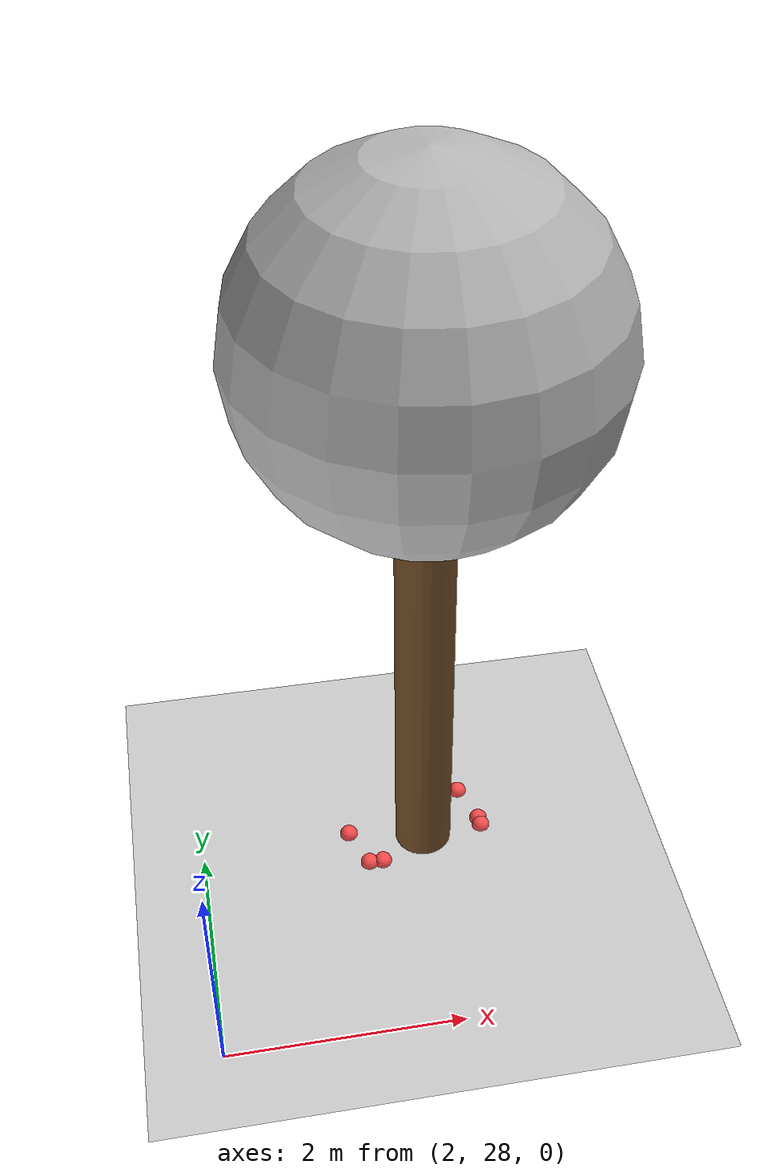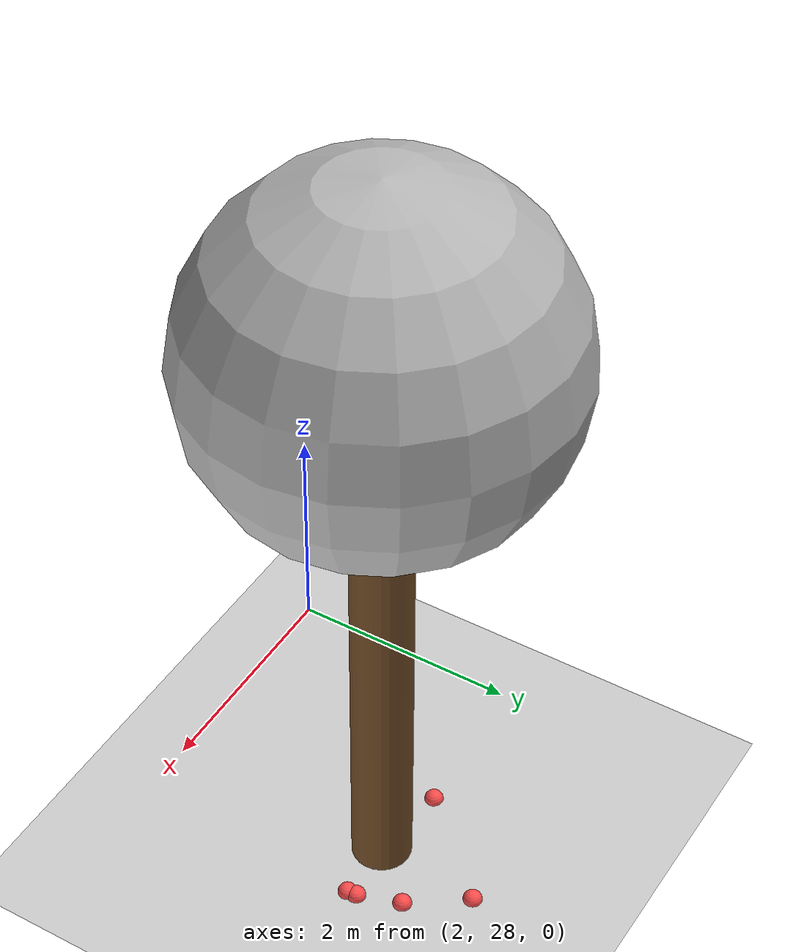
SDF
<sdf version="1.7">
 <world name="default">
  <model name="ground_plane">
   <static>1</static>
   <link name="link">
    <collision name="collision">
     <geometry><plane><normal>0 0 1</normal><size>100 100</size></plane></geometry>
     <surface>
      <contact><collide_bitmask>65535</collide_bitmask></contact>
      <friction><ode><mu>100</mu><mu2>50</mu2></ode></friction>
     </surface>
    </collision>
    <visual name="visual">
     <cast_shadows>0</cast_shadows>
     <geometry><plane><normal>0 0 1</normal><size>100 100</size></plane></geometry>
     <material>
      <script><uri>file://media/materials/scripts/gazebo.material</uri><name>Gazebo/Grey</name></script>
     </material>
    </visual>
   </link>
  </model>
  <model name="tree_simple_27">
   <static>1</static>
   <link name="link">
    <pose>0 0 0.1 0 -0 0</pose>
    <inertial>
     <mass>666</mass>
     <inertia>
      <ixx>0.0861167</ixx>
      <ixy>0</ixy>
      <ixz>0</ixz>
      <iyy>0.0861167</iyy>
      <iyz>0</iyz>
      <izz>0.0861167</izz>
     </inertia>
    </inertial>
    <collision name="collision_trunk">
     <pose>0 0 2 0 -0 0</pose>
     <geometry><cylinder><radius>0.25</radius><length>4</length></cylinder></geometry>
     <surface>
      <contact>
       <poissons_ratio>0.347</poissons_ratio>
       <elastic_modulus>8.8e+09</elastic_modulus>
       <ode><kp>100000</kp><kd>100</kd><max_vel>100</max_vel><min_depth>0.001</min_depth></ode>
      </contact>
      <friction>
       <torsional>
        <coefficient>1</coefficient>
        <use_patch_radius>0</use_patch_radius>
        <surface_radius>0.01</surface_radius>
       </torsional>
      </friction>
     </surface>
    </collision>
    <collision name="collision_treetop">
     <pose>0 0 5.2 0 -0 0</pose>
     <geometry><sphere><radius>1.5</radius></sphere></geometry>
     <surface>
      <contact>
       <poissons_ratio>0.347</poissons_ratio>
       <elastic_modulus>8.8e+09</elastic_modulus>
       <ode><kp>100000</kp><kd>100</kd><max_vel>100</max_vel><min_depth>0.001</min_depth></ode>
      </contact>
      <friction>
       <torsional>
        <coefficient>1</coefficient>
        <use_patch_radius>0</use_patch_radius>
        <surface_radius>0.01</surface_radius>
       </torsional>
      </friction>
     </surface>
    </collision>
    <visual name="trunk">
     <pose>0 0 2 0 -0 0</pose>
     <geometry><cylinder><radius>0.25</radius><length>4</length></cylinder></geometry>
     <material>
      <script>
       <uri>model://tree_simple/scripts</uri>
       <uri>model://tree_simple/materials/textures</uri>
       <name>TreeSimple/Trunk</name>
      </script>
     </material>
    </visual>
    <visual name="treetop">
     <pose>0 0 5.2 0 -0 0</pose>
     <geometry><sphere><radius>1.5</radius></sphere></geometry>
     <material>
      <script>
       <uri>model://tree_simple/scripts</uri>
       <uri>model://tree_simple/materials/textures</uri>
       <name>TreeSimple/Treetop</name>
      </script>
     </material>
    </visual>
   </link>
   <pose>4 30 -0.1 0 -0 0</pose>
  </model>
  <model name="seed_red_115">
   <link name="link">
    <inertial>
     <mass>1</mass>
     <inertia><ixx>0.1</ixx><ixy>0</ixy><ixz>0</ixz><iyy>0.1</iyy><iyz>0</iyz><izz>0.1</izz></inertia>
    </inertial>
    <visual name="visual">
     <geometry><sphere><radius>0.08</radius></sphere></geometry>
     <material>
      <script><name>Gazebo/Grey</name><uri>file://media/materials/scripts/gazebo.material</uri></script>
      <shader type="pixel"><normal_map>__default__</normal_map></shader>
      <ambient>1 0.3 0.3 1</ambient>
      <diffuse>0.7 0.7 0.7 1</diffuse>
      <specular>0.01 0.01 0.01 1</specular>
      <emissive>0 0 0 1</emissive>
     </material>
    </visual>
    <collision name="collision">
     <geometry><sphere><radius>0.0005</radius></sphere></geometry>
     <surface>
      <friction>
       <ode><mu>1</mu><mu2>1</mu2><fdir1>0 0 0</fdir1><slip1>0</slip1><slip2>0</slip2></ode>
       <torsional>
        <coefficient>1</coefficient>
        <patch_radius>0</patch_radius>
        <surface_radius>0</surface_radius>
        <use_patch_radius>1</use_patch_radius>
        <ode><slip>0</slip></ode>
       </torsional>
      </friction>
      <bounce><restitution_coefficient>0</restitution_coefficient><threshold>1e+06</threshold></bounce>
      <contact>
       <collide_without_contact>0</collide_without_contact>
       <collide_without_contact_bitmask>1</collide_without_contact_bitmask>
       <collide_bitmask>1</collide_bitmask>
       <ode>
        <soft_cfm>0</soft_cfm>
        <soft_erp>0.2</soft_erp>
        <kp>1e+13</kp>
        <kd>1</kd>
        <max_vel>0.01</max_vel>
        <min_depth>0</min_depth>
       </ode>
       <bullet>
        <split_impulse>1</split_impulse>
        <split_impulse_penetration_threshold>-0.01</split_impulse_penetration_threshold>
        <soft_cfm>0</soft_cfm>
        <soft_erp>0.2</soft_erp>
        <kp>1e+13</kp>
        <kd>1</kd>
       </bullet>
      </contact>
     </surface>
    </collision>
   </link>
   <static>0</static>
   <pose>4.41543 30.4467 0.0005 0 -0 0</pose>
  </model>
  <model name="seed_red_116">
   <link name="link">
    <inertial>
     <mass>1</mass>
     <inertia><ixx>0.1</ixx><ixy>0</ixy><ixz>0</ixz><iyy>0.1</iyy><iyz>0</iyz><izz>0.1</izz></inertia>
    </inertial>
    <visual name="visual">
     <geometry><sphere><radius>0.08</radius></sphere></geometry>
     <material>
      <script><name>Gazebo/Grey</name><uri>file://media/materials/scripts/gazebo.material</uri></script>
      <shader type="pixel"><normal_map>__default__</normal_map></shader>
      <ambient>1 0.3 0.3 1</ambient>
      <diffuse>0.7 0.7 0.7 1</diffuse>
      <specular>0.01 0.01 0.01 1</specular>
      <emissive>0 0 0 1</emissive>
     </material>
    </visual>
    <collision name="collision">
     <geometry><sphere><radius>0.0005</radius></sphere></geometry>
     <surface>
      <friction>
       <ode><mu>1</mu><mu2>1</mu2><fdir1>0 0 0</fdir1><slip1>0</slip1><slip2>0</slip2></ode>
       <torsional>
        <coefficient>1</coefficient>
        <patch_radius>0</patch_radius>
        <surface_radius>0</surface_radius>
        <use_patch_radius>1</use_patch_radius>
        <ode><slip>0</slip></ode>
       </torsional>
      </friction>
      <bounce><restitution_coefficient>0</restitution_coefficient><threshold>1e+06</threshold></bounce>
      <contact>
       <collide_without_contact>0</collide_without_contact>
       <collide_without_contact_bitmask>1</collide_without_contact_bitmask>
       <collide_bitmask>1</collide_bitmask>
       <ode>
        <soft_cfm>0</soft_cfm>
        <soft_erp>0.2</soft_erp>
        <kp>1e+13</kp>
        <kd>1</kd>
        <max_vel>0.01</max_vel>
        <min_depth>0</min_depth>
       </ode>
       <bullet>
        <split_impulse>1</split_impulse>
        <split_impulse_penetration_threshold>-0.01</split_impulse_penetration_threshold>
        <soft_cfm>0</soft_cfm>
        <soft_erp>0.2</soft_erp>
        <kp>1e+13</kp>
        <kd>1</kd>
       </bullet>
      </contact>
     </surface>
    </collision>
   </link>
   <static>0</static>
   <pose>3.58799 29.7436 0.0005 0 -0 0</pose>
  </model>
  <model name="seed_red_117">
   <link name="link">
    <inertial>
     <mass>1</mass>
     <inertia><ixx>0.1</ixx><ixy>0</ixy><ixz>0</ixz><iyy>0.1</iyy><iyz>0</iyz><izz>0.1</izz></inertia>
    </inertial>
    <visual name="visual">
     <geometry><sphere><radius>0.08</radius></sphere></geometry>
     <material>
      <script><name>Gazebo/Grey</name><uri>file://media/materials/scripts/gazebo.material</uri></script>
      <shader type="pixel"><normal_map>__default__</normal_map></shader>
      <ambient>1 0.3 0.3 1</ambient>
      <diffuse>0.7 0.7 0.7 1</diffuse>
      <specular>0.01 0.01 0.01 1</specular>
      <emissive>0 0 0 1</emissive>
     </material>
    </visual>
    <collision name="collision">
     <geometry><sphere><radius>0.0005</radius></sphere></geometry>
     <surface>
      <friction>
       <ode><mu>1</mu><mu2>1</mu2><fdir1>0 0 0</fdir1><slip1>0</slip1><slip2>0</slip2></ode>
       <torsional>
        <coefficient>1</coefficient>
        <patch_radius>0</patch_radius>
        <surface_radius>0</surface_radius>
        <use_patch_radius>1</use_patch_radius>
        <ode><slip>0</slip></ode>
       </torsional>
      </friction>
      <bounce><restitution_coefficient>0</restitution_coefficient><threshold>1e+06</threshold></bounce>
      <contact>
       <collide_without_contact>0</collide_without_contact>
       <collide_without_contact_bitmask>1</collide_without_contact_bitmask>
       <collide_bitmask>1</collide_bitmask>
       <ode>
        <soft_cfm>0</soft_cfm>
        <soft_erp>0.2</soft_erp>
        <kp>1e+13</kp>
        <kd>1</kd>
        <max_vel>0.01</max_vel>
        <min_depth>0</min_depth>
       </ode>
       <bullet>
        <split_impulse>1</split_impulse>
        <split_impulse_penetration_threshold>-0.01</split_impulse_penetration_threshold>
        <soft_cfm>0</soft_cfm>
        <soft_erp>0.2</soft_erp>
        <kp>1e+13</kp>
        <kd>1</kd>
       </bullet>
      </contact>
     </surface>
    </collision>
   </link>
   <static>0</static>
   <pose>3.46661 29.7474 0.0005 0 -0 0</pose>
  </model>
  <model name="seed_red_118">
   <link name="link">
    <inertial>
     <mass>1</mass>
     <inertia><ixx>0.1</ixx><ixy>0</ixy><ixz>0</ixz><iyy>0.1</iyy><iyz>0</iyz><izz>0.1</izz></inertia>
    </inertial>
    <visual name="visual">
     <geometry><sphere><radius>0.08</radius></sphere></geometry>
     <material>
      <script><name>Gazebo/Grey</name><uri>file://media/materials/scripts/gazebo.material</uri></script>
      <shader type="pixel"><normal_map>__default__</normal_map></shader>
      <ambient>1 0.3 0.3 1</ambient>
      <diffuse>0.7 0.7 0.7 1</diffuse>
      <specular>0.01 0.01 0.01 1</specular>
      <emissive>0 0 0 1</emissive>
     </material>
    </visual>
    <collision name="collision">
     <geometry><sphere><radius>0.0005</radius></sphere></geometry>
     <surface>
      <friction>
       <ode><mu>1</mu><mu2>1</mu2><fdir1>0 0 0</fdir1><slip1>0</slip1><slip2>0</slip2></ode>
       <torsional>
        <coefficient>1</coefficient>
        <patch_radius>0</patch_radius>
        <surface_radius>0</surface_radius>
        <use_patch_radius>1</use_patch_radius>
        <ode><slip>0</slip></ode>
       </torsional>
      </friction>
      <bounce><restitution_coefficient>0</restitution_coefficient><threshold>1e+06</threshold></bounce>
      <contact>
       <collide_without_contact>0</collide_without_contact>
       <collide_without_contact_bitmask>1</collide_without_contact_bitmask>
       <collide_bitmask>1</collide_bitmask>
       <ode>
        <soft_cfm>0</soft_cfm>
        <soft_erp>0.2</soft_erp>
        <kp>1e+13</kp>
        <kd>1</kd>
        <max_vel>0.01</max_vel>
        <min_depth>0</min_depth>
       </ode>
       <bullet>
        <split_impulse>1</split_impulse>
        <split_impulse_penetration_threshold>-0.01</split_impulse_penetration_threshold>
        <soft_cfm>0</soft_cfm>
        <soft_erp>0.2</soft_erp>
        <kp>1e+13</kp>
        <kd>1</kd>
       </bullet>
      </contact>
     </surface>
    </collision>
   </link>
   <static>0</static>
   <pose>4.53824 30.0858 0.0005 0 -0 0</pose>
  </model>
  <model name="seed_red_119">
   <link name="link">
    <inertial>
     <mass>1</mass>
     <inertia><ixx>0.1</ixx><ixy>0</ixy><ixz>0</ixz><iyy>0.1</iyy><iyz>0</iyz><izz>0.1</izz></inertia>
    </inertial>
    <visual name="visual">
     <geometry><sphere><radius>0.08</radius></sphere></geometry>
     <material>
      <script><name>Gazebo/Grey</name><uri>file://media/materials/scripts/gazebo.material</uri></script>
      <shader type="pixel"><normal_map>__default__</normal_map></shader>
      <ambient>1 0.3 0.3 1</ambient>
      <diffuse>0.7 0.7 0.7 1</diffuse>
      <specular>0.01 0.01 0.01 1</specular>
      <emissive>0 0 0 1</emissive>
     </material>
    </visual>
    <collision name="collision">
     <geometry><sphere><radius>0.0005</radius></sphere></geometry>
     <surface>
      <friction>
       <ode><mu>1</mu><mu2>1</mu2><fdir1>0 0 0</fdir1><slip1>0</slip1><slip2>0</slip2></ode>
       <torsional>
        <coefficient>1</coefficient>
        <patch_radius>0</patch_radius>
        <surface_radius>0</surface_radius>
        <use_patch_radius>1</use_patch_radius>
        <ode><slip>0</slip></ode>
       </torsional>
      </friction>
      <bounce><restitution_coefficient>0</restitution_coefficient><threshold>1e+06</threshold></bounce>
      <contact>
       <collide_without_contact>0</collide_without_contact>
       <collide_without_contact_bitmask>1</collide_without_contact_bitmask>
       <collide_bitmask>1</collide_bitmask>
       <ode>
        <soft_cfm>0</soft_cfm>
        <soft_erp>0.2</soft_erp>
        <kp>1e+13</kp>
        <kd>1</kd>
        <max_vel>0.01</max_vel>
        <min_depth>0</min_depth>
       </ode>
       <bullet>
        <split_impulse>1</split_impulse>
        <split_impulse_penetration_threshold>-0.01</split_impulse_penetration_threshold>
        <soft_cfm>0</soft_cfm>
        <soft_erp>0.2</soft_erp>
        <kp>1e+13</kp>
        <kd>1</kd>
       </bullet>
      </contact>
     </surface>
    </collision>
   </link>
   <static>0</static>
   <pose>3.3306 30.1057 0.0005 0 -0 0</pose>
  </model>
  <model name="seed_red_120">
   <link name="link">
    <inertial>
     <mass>1</mass>
     <inertia><ixx>0.1</ixx><ixy>0</ixy><ixz>0</ixz><iyy>0.1</iyy><iyz>0</iyz><izz>0.1</izz></inertia>
    </inertial>
    <visual name="visual">
     <geometry><sphere><radius>0.08</radius></sphere></geometry>
     <material>
      <script><name>Gazebo/Grey</name><uri>file://media/materials/scripts/gazebo.material</uri></script>
      <shader type="pixel"><normal_map>__default__</normal_map></shader>
      <ambient>1 0.3 0.3 1</ambient>
      <diffuse>0.7 0.7 0.7 1</diffuse>
      <specular>0.01 0.01 0.01 1</specular>
      <emissive>0 0 0 1</emissive>
     </material>
    </visual>
    <collision name="collision">
     <geometry><sphere><radius>0.0005</radius></sphere></geometry>
     <surface>
      <friction>
       <ode><mu>1</mu><mu2>1</mu2><fdir1>0 0 0</fdir1><slip1>0</slip1><slip2>0</slip2></ode>
       <torsional>
        <coefficient>1</coefficient>
        <patch_radius>0</patch_radius>
        <surface_radius>0</surface_radius>
        <use_patch_radius>1</use_patch_radius>
        <ode><slip>0</slip></ode>
       </torsional>
      </friction>
      <bounce><restitution_coefficient>0</restitution_coefficient><threshold>1e+06</threshold></bounce>
      <contact>
       <collide_without_contact>0</collide_without_contact>
       <collide_without_contact_bitmask>1</collide_without_contact_bitmask>
       <collide_bitmask>1</collide_bitmask>
       <ode>
        <soft_cfm>0</soft_cfm>
        <soft_erp>0.2</soft_erp>
        <kp>1e+13</kp>
        <kd>1</kd>
        <max_vel>0.01</max_vel>
        <min_depth>0</min_depth>
       </ode>
       <bullet>
        <split_impulse>1</split_impulse>
        <split_impulse_penetration_threshold>-0.01</split_impulse_penetration_threshold>
        <soft_cfm>0</soft_cfm>
        <soft_erp>0.2</soft_erp>
        <kp>1e+13</kp>
        <kd>1</kd>
       </bullet>
      </contact>
     </surface>
    </collision>
   </link>
   <static>0</static>
   <pose>4.54558 30.0061 0.0005 0 -0 0</pose>
  </model>
  <model name="seed_red_121">
   <link name="link">
    <inertial>
     <mass>1</mass>
     <inertia><ixx>0.1</ixx><ixy>0</ixy><ixz>0</ixz><iyy>0.1</iyy><iyz>0</iyz><izz>0.1</izz></inertia>
    </inertial>
    <visual name="visual">
     <geometry><sphere><radius>0.08</radius></sphere></geometry>
     <material>
      <script><name>Gazebo/Grey</name><uri>file://media/materials/scripts/gazebo.material</uri></script>
      <shader type="pixel"><normal_map>__default__</normal_map></shader>
      <ambient>1 0.3 0.3 1</ambient>
      <diffuse>0.7 0.7 0.7 1</diffuse>
      <specular>0.01 0.01 0.01 1</specular>
      <emissive>0 0 0 1</emissive>
     </material>
    </visual>
    <collision name="collision">
     <geometry><sphere><radius>0.0005</radius></sphere></geometry>
     <surface>
      <friction>
       <ode><mu>1</mu><mu2>1</mu2><fdir1>0 0 0</fdir1><slip1>0</slip1><slip2>0</slip2></ode>
       <torsional>
        <coefficient>1</coefficient>
        <patch_radius>0</patch_radius>
        <surface_radius>0</surface_radius>
        <use_patch_radius>1</use_patch_radius>
        <ode><slip>0</slip></ode>
       </torsional>
      </friction>
      <bounce><restitution_coefficient>0</restitution_coefficient><threshold>1e+06</threshold></bounce>
      <contact>
       <collide_without_contact>0</collide_without_contact>
       <collide_without_contact_bitmask>1</collide_without_contact_bitmask>
       <collide_bitmask>1</collide_bitmask>
       <ode>
        <soft_cfm>0</soft_cfm>
        <soft_erp>0.2</soft_erp>
        <kp>1e+13</kp>
        <kd>1</kd>
        <max_vel>0.01</max_vel>
        <min_depth>0</min_depth>
       </ode>
       <bullet>
        <split_impulse>1</split_impulse>
        <split_impulse_penetration_threshold>-0.01</split_impulse_penetration_threshold>
        <soft_cfm>0</soft_cfm>
        <soft_erp>0.2</soft_erp>
        <kp>1e+13</kp>
        <kd>1</kd>
       </bullet>
      </contact>
     </surface>
    </collision>
   </link>
   <static>0</static>
   <pose>4.08052 30.9115 0.0005 0 -0 0</pose>
  </model>
 </world>
</sdf>
